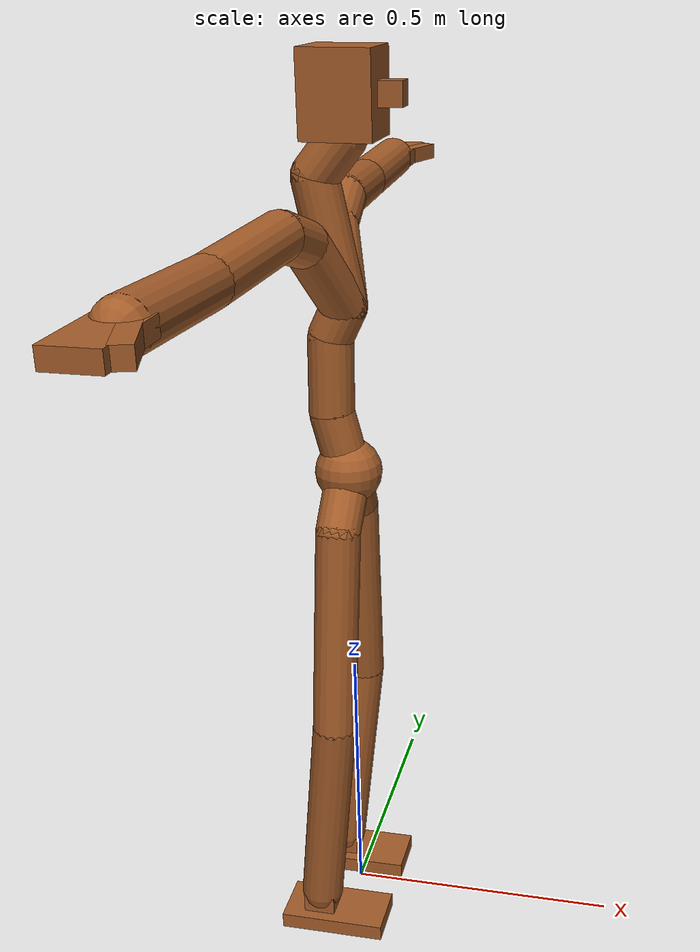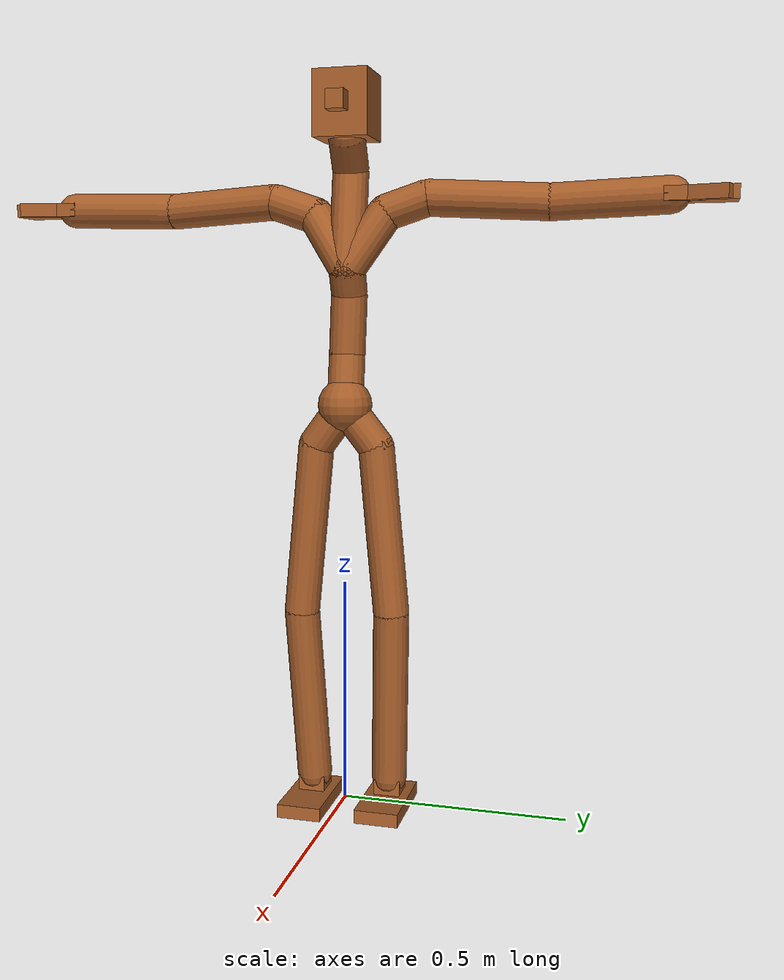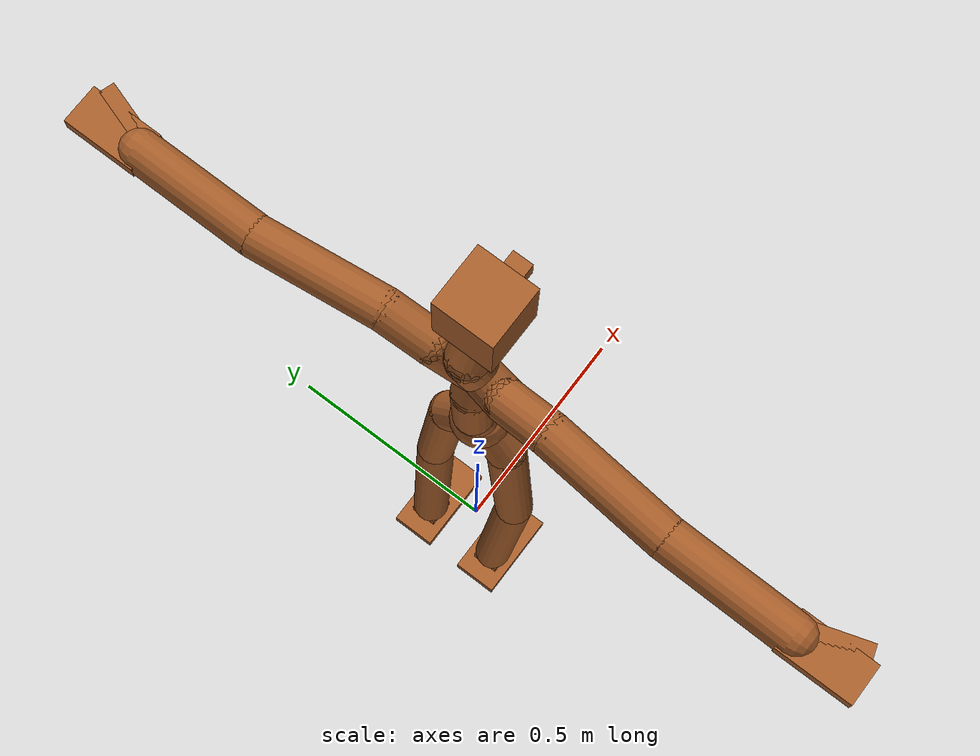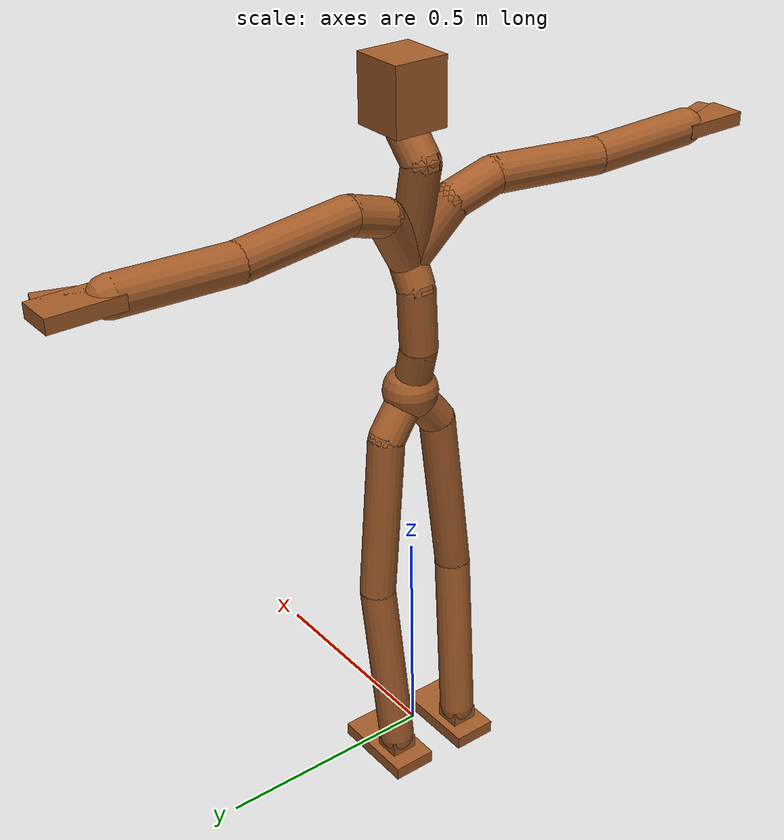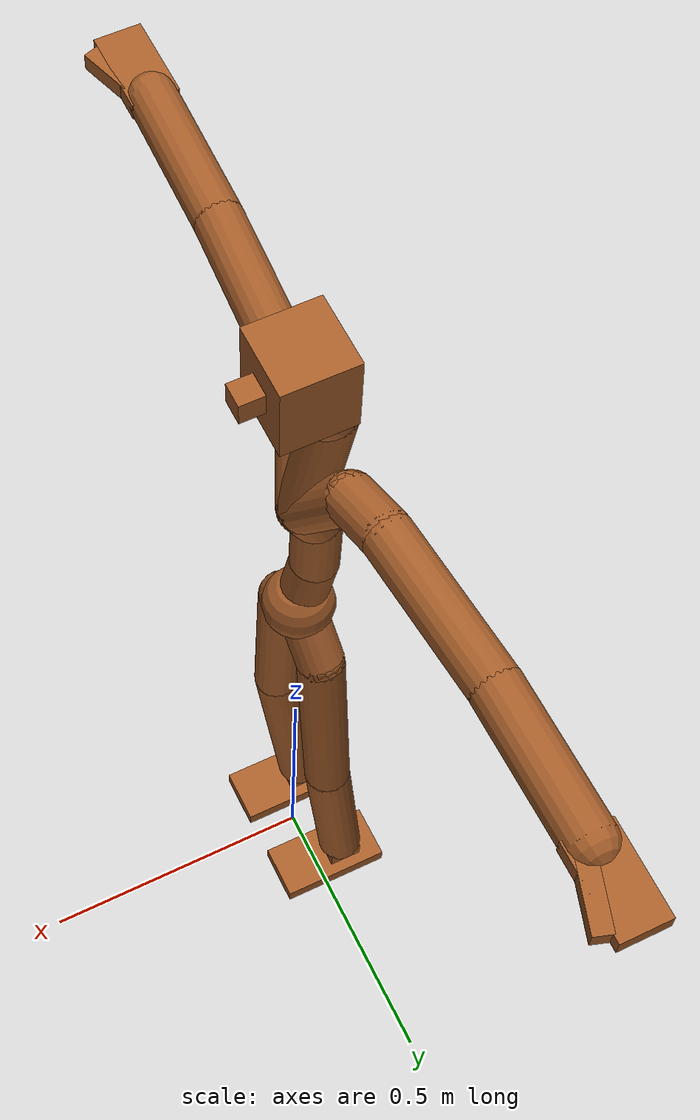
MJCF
<mujoco model="common-rig">
    <!--
            Robot Intelligence Lab
            Common Rig (Custom Humanoid) model

            @ Contact us : taemoon-jeong (motor_moon94@korea.ac.kr)
    -->
    <compiler coordinate="local" inertiafromgeom="true" angle="radian"/>

    <default>
        <joint limited="true" damping="1" armature="0"/>
        <geom contype="1" condim="3" margin="0.001" solref=".02 1" solimp=".8 .8 .01" material="matgeom"/>
        <motor ctrlrange="-.4 .4" ctrllimited="true"/>
    </default>

    <option timestep="0.005" iterations="50" tolerance="1e-10" solver="Newton" jacobian="dense" cone="pyramidal"/>
    <size nconmax="50" njmax="200" nstack="10000"/>

    <visual>
        <map force="0.1" zfar="30"/>
        <rgba haze="0.15 0.25 0.35 1"/>
        <quality shadowsize="2048"/>
        <global offwidth="800" offheight="800"/>
    </visual>

    <asset>
        <texture name="texgeom" type="cube" builtin="flat" mark="cross" width="127" height="1278"
            rgb1="0.8 0.6 0.4" rgb2="0.8 0.6 0.4" markrgb="1 1 1" random="0.01"/>
        <material name="matgeom" texture="texgeom" texuniform="true" rgba="0.8 0.6 0.4 1.0"/>
    </asset>

    <worldbody>

        <body name="base" pos="0 0 0.9">
            <freejoint name="base"/>
            <geom name="base" type="sphere" pos="0 0 0" size="0.06"/>
            <body name="pelvis" pos="0 0 0" euler="0 0 0" >
                <geom name="base2lpelvis" type="capsule" fromto="0 0 0 -0.006815334782004356 0.06951973587274551 -0.09140622615814209"  size="0.04" />
                <geom name="base2rpelvis" type="capsule" fromto="0 0 0 -0.004319818690419197 -0.06767047941684723 -0.09052169322967529"  size="0.04" />
                <joint name="pelvis1" type="hinge" pos="0 0 0" axis="1 0 0" range="-3.141592 3.141592" damping="60" stiffness="600" armature="0.02" />
                <joint name="pelvis2" type="hinge" pos="0 0 0" axis="0 1 0" range="-3.141592 3.141592" damping="60" stiffness="600" armature="0.02" />
                <joint name="pelvis3" type="hinge" pos="0 0 0" axis="0 0 1" range="-3.141592 3.141592" damping="60" stiffness="600" armature="0.02" />

                <body name="left_hip" pos="-0.006815334782004356 0.06951973587274551 -0.09140622615814209" euler="0 0 0">
                    <geom name="lhip2lknee" type="capsule" fromto="0 0 0 -0.004495806992 0.03427654505 -0.3751985729"  size="0.04" />
                    <joint name="l_hip1" type="hinge" pos="0 0 0" axis="1 0 0" range="-3.141592 3.141592" damping="30" stiffness="900" armature="0.01" />
                    <joint name="l_hip2" type="hinge" pos="0 0 0" axis="0 1 0" range="-3.141592 3.141592" damping="30" stiffness="900" armature="0.01" />
                    <joint name="l_hip3" type="hinge" pos="0 0 0" axis="0 0 1" range="-3.141592 3.141592" damping="30" stiffness="900" armature="0.01" />
                    <body name="left_knee" pos="-0.004495806992 0.03427654505 -0.3751985729" euler="0 0 0">
                        <geom name="lknee2lankle" type="capsule" fromto="0 0 0 -0.04369332828 -0.01359570026 -0.3979604542"  size="0.04" />
                        <joint name="l_knee" type="hinge" pos="0 0 0" axis="0 1 0" range="0.0175 2.0944" damping="30" stiffness="900" armature="0.0060" />
                        <body name="left_ankle" pos="-0.04369332828 -0.01359570026 -0.3979604542" euler="0 0 0">
                            <geom name="lankle" type="box" pos="0 0 -0.025" size="0.03 0.03 0.025" />
                            <geom name="lfoot" type="box" pos="0.03 0 -0.05" size="0.1 0.05 0.015" />
                            <joint name="l_ankle1" type="hinge" pos="0 0 0" axis="0 1 0" range="-3.141592 3.141592" stiffness="600" damping="20" armature="0.0008" />
                            <joint name="l_ankle2" type="hinge" pos="0 0 0" axis="1 0 0" range="-3.141592 3.141592" stiffness="600" damping="20" armature="0.0006" />
                            <joint name="l_ankle3" type="hinge" pos="0 0 0" axis="0 0 1" range="-0.52333333333 0.52333333333" stiffness="600" damping="20" armature="0.0006" />
                        </body>
                    </body>
                </body>

                <body name="right_hip" pos="-0.004319818690419197 -0.06767047941684723 -0.09052169322967529" euler="0 0 0">
                    <geom name="rhip2rknee" type="capsule" fromto="0 0 0 -0.008850031532 -0.03829005361 -0.3825689852"  size="0.04" />
                    <joint name="r_hip1" type="hinge" pos="0 0 0" axis="1 0 0" range="-3.141592 3.141592" damping="30" stiffness="900" armature="0.01" />
                    <joint name="r_hip2" type="hinge" pos="0 0 0" axis="0 1 0" range="-3.141592 3.141592" damping="30" stiffness="900" armature="0.01" />
                    <joint name="r_hip3" type="hinge" pos="0 0 0" axis="0 0 1" range="-0.52333333333 0.52333333333" damping="30" stiffness="900" armature="0.01" />
                    <body name="right_knee" pos="-0.008850031532 -0.03829005361 -0.3825689852" euler="0 0 0">
                        <geom name="rknee2rankle" type="capsule" fromto="0 0 0 -0.04231179971 0.01577377319 -0.398414582"  size="0.04" />
                        <joint name="r_knee" type="hinge" pos="0 0 0" axis="0 1 0" range="0.0175 2.0944" damping="30" stiffness="900" armature="0.0060" />
                        <body name="right_ankle" pos="-0.04231179971 0.01577377319 -0.398414582" euler="0 0 0">
                            <geom name="rankle" type="box" pos="0 0 -0.025" size="0.03 0.03 0.025" />
                            <geom name="rfoot" type="box" pos="0.03 0 -0.05" size="0.1 0.05 0.015" />
                            <joint name="r_ankle1" type="hinge" pos="0 0 0" axis="0 1 0" range="-3.141592 3.141592" stiffness="600" damping="20" armature="0.0008" />
                            <joint name="r_ankle2" type="hinge" pos="0 0 0" axis="1 0 0" range="-3.141592 3.141592" stiffness="600" damping="20" armature="0.0006" />
                            <joint name="r_ankle3" type="hinge" pos="0 0 0" axis="0 0 1" range="-3.141592 3.141592" stiffness="600" damping="20" armature="0.0006" />
                        </body>
                    </body>
                </body>

                <geom name="base2spine1" type="capsule" fromto="0 0 0 -0.02669631317257881 -0.00253287423402071 0.10896323621273041"  size="0.04" density="2226"/>
                <body name="spine1" pos="-0.02669631317257881 -0.00253287423402071 0.10896323621273041" euler="0 0 0">
                    <geom name="spine2spine" type="capsule" fromto="0 0 0 0.001092471182 0.005487040151 0.1351804286"  size="0.04" density="2226"/>
                    <joint name="spine1" type="hinge" pos="0 0 0" axis="0 1 0" range="-3.141592 3.141592" damping="60" stiffness="600" armature="0.02" />

                    <body name="spine2" pos="0.001092471182 0.005487040151 0.1351804286" euler="0 0 0">
                        <geom name="spine2spine2" type="capsule" fromto="0 0 0 0.02542456612 0.001456997823 0.05292221904"  size="0.04" density="2226"/>
                        <joint name="spine2" type="hinge" pos="0 0 0" axis="0 1 0" range="-3.141592 3.141592" damping="60" stiffness="600" armature="0.02" />

                        <body name="spine3" pos="0.02542456612 0.001456997823 0.05292221904" euler="0 0 0">
                            <geom name="spine2spine3" type="capsule" fromto="0 0 0 -0.04285703227 -0.002778389724 0.2138703763"  size="0.04" density="2226"/>
                            <joint name="spine3" type="hinge" pos="0 0 0" axis="0 1 0" range="-3.141592 3.141592" damping="60" stiffness="600" armature="0.02" />

                            <body name="neck" pos="-0.04285703227 -0.002778389724 0.2138703763" euler="0 0 0">
                                <geom name="neck2head" type="capsule" fromto="0 0 0 0.05134896934 0.00515184016 0.0649696588"  size="0.04" />

                                <body name="head" pos="0.05134896934 0.00515184016 0.06496965885" euler="0 0 0">
                                    <geom name="head" type="box" pos="0 0  0.06496965885" size="0.06 0.06 0.07" />
                                    <geom name="nose" type="box" pos="0.05 0  0.06496965885" size="0.05 0.02 0.02" />
                                    <joint name="head1" type="hinge" pos="0 0 0" axis="1 0 0" range="-3.141592 3.141592" damping="5" stiffness="50" armature="0.02" />
                                    <joint name="head2" type="hinge" pos="0 0 0" axis="0 1 0" range="-3.141592 3.141592" damping="5" stiffness="50" armature="0.02" />
                                    <joint name="head3" type="hinge" pos="0 0 0" axis="0 0 1" range="-3.141592 3.141592" damping="5" stiffness="50" armature="0.02" />
                                </body>
                            </body>

                            <geom name="spine2lcollar" type="capsule" fromto="0 0 0 -0.03408960626 0.07884474564 0.1217493117"  size="0.04" />
                            <body name="left_collar" pos="-0.03408960626 0.07884474564 0.1217493117" euler="0 0 0">
                                <geom name="lcollar2lshoulder" type="capsule" fromto="0 0 0 -0.008868150413 0.09097691625 0.03046888113"  size="0.04" />
                                <joint name="l_collar1" type="hinge" pos="0 0 0" axis="1 0 0" range="-3.141592 3.141592" stiffness="200" damping="20" armature="0.0068" />
                                <joint name="l_collar2" type="hinge" pos="0 0 0" axis="0 0 1" range="-3.141592 3.141592" stiffness="200" damping="20" armature="0.0051" />
                                <joint name="l_collar3" type="hinge" pos="0 0 0" axis="0 1 0" range="-3.141592 3.141592" stiffness="200" damping="20" armature="0.0051" />

                                <body name="left_shoulder" pos="-0.008868150413 0.09097691625 0.03046888113" euler="0 0 0">
                                    <geom name="lshoulder2lelbow" type="capsule" fromto="0 0 0 -0.02745642886 0.2596122175 -0.01277205348"  size="0.04" />
                                    <joint name="l_shoulder1" type="hinge" pos="0 0 0" axis="1 0 0" range="-3.141592 3.141592" stiffness="200" damping="20" armature="0.0068" />
                                    <joint name="l_shoulder2" type="hinge" pos="0 0 0" axis="0 0 1" range="-3.141592 3.141592" stiffness="200" damping="20" armature="0.0051" />
                                    <joint name="l_shoulder3" type="hinge" pos="0 0 0" axis="0 1 0" range="-3.141592 3.141592" stiffness="200" damping="20" armature="0.0051" />

                                    <body name="left_elbow" pos="-0.02745642886 0.2596122175 -0.01277205348" euler="0 0 0">
                                        <geom name="lelbow2lwrist" type="capsule" fromto="0 0 0 -0.001170918345 0.2492336035 0.008986026049"  size="0.04" />
                                        <joint name="l_elbow" type="hinge" pos="0 0 0" axis="0 0 1" range="-2.61666666667 -0.01" stiffness="150" damping="15" armature="0.0028" />

                                        <body name="left_wrist" pos="-0.001170918345 0.2492336035 0.008986026049" euler="0 0 0">
                                            <geom name="lthumb" type="box" pos="0.03 0.05 0" size="0.015 0.07 0.015" euler="0 0 -60"/>
                                            <geom name="lpalm" type="box" pos="0 0.06 0" size="0.04 0.075 0.015" euler="0 0 0"/>
                                            <joint name="l_wrist1" type="hinge" pos="0 0 0" axis="0 1 0" range="-3.141592 3.141592" damping="5" stiffness="50" armature="0.02" />
                                            <joint name="l_wrist2" type="hinge" pos="0 0 0" axis="0 0 1" range="-3.141592 3.141592" damping="5" stiffness="50" armature="0.02" />
                                            <joint name="l_wrist3" type="hinge" pos="0 0 0" axis="1 0 0" range="-3.141592 3.141592" damping="5" stiffness="50" armature="0.02" />
                                        </body>
                                    </body>
                                </body>
                            </body>

                            <geom name="spine2rcollar" type="capsule" fromto="0 0 0 -0.0386152789 -0.08175918739 0.1188328564"  size="0.04" />
                            <body name="right_collar" pos="-0.0386152789 -0.08175918739 0.1188328564" euler="0 0 0">
                                <geom name="rcollar2rshoulder" type="capsule" fromto="0 0 0 -0.009143069386 -0.0960123837 0.0325511694"  size="0.04" />
                                <joint name="r_collar1" type="hinge" pos="0 0 0" axis="1 0 0" range="-3.141592 3.141592" stiffness="200" damping="20" armature="0.0068" />
                                <joint name="r_collar2" type="hinge" pos="0 0 0" axis="0 0 1" range="-3.141592 3.141592" stiffness="200" damping="20" armature="0.0051" />
                                <joint name="r_collar3" type="hinge" pos="0 0 0" axis="0 1 0" range="-3.141592 3.141592" stiffness="200" damping="20" armature="0.0051" />

                                <body name="right_shoulder" pos="-0.009143069386 -0.0960123837 0.0325511694" euler="0 0 0">
                                    <geom name="rshoulder2relbow" type="capsule" fromto="0 0 0 -0.02140098065 -0.2537419498 -0.0133292377"  size="0.04" />
                                    <joint name="r_shoulder1" type="hinge" pos="0 0 0" axis="1 0 0" range="-3.141592 3.141592" stiffness="200" damping="20" armature="0.0068" />
                                    <joint name="r_shoulder2" type="hinge" pos="0 0 0" axis="0 0 1" range="-3.141592 3.141592" stiffness="200" damping="20" armature="0.0051" />
                                    <joint name="r_shoulder3" type="hinge" pos="0 0 0" axis="0 1 0" range="-3.141592 3.141592" stiffness="200" damping="20" armature="0.0051" />

                                    <body name="right_elbow" pos="-0.02140098065 -0.2537419498 -0.0133292377" euler="0 0 0">
                                        <geom name="relbow2rwrist" type="capsule" fromto="0 0 0 -0.005559198558 -0.2552981079 0.007772296667"  size="0.04" />
                                        <joint name="r_elbow" type="hinge" pos="0 0 0" axis="0 0 1" range="0.01 2.61666666667" stiffness="150" damping="15" armature="0.0028" />

                                        <body name="right_wrist" pos="-0.005559198558 -0.2552981079 0.007772296667" euler="0 0 0">
                                            <geom name="rthumb" type="box" pos="0.03 -0.05 0" size="0.015 0.07 0.015" euler="0 0 60"/>
                                            <geom name="rpalm" type="box" pos="0 -0.06 0" size="0.04 0.075 0.015" euler="0 0 0"/>
                                            <joint name="r_wrist1" type="hinge" pos="0 0 0" axis="0 1 0" range="-3.141592 3.141592" damping="5" stiffness="50" armature="0.02" />
                                            <joint name="r_wrist2" type="hinge" pos="0 0 0" axis="0 0 1" range="-3.141592 3.141592" damping="5" stiffness="50" armature="0.02" />
                                            <joint name="r_wrist3" type="hinge" pos="0 0 0" axis="1 0 0" range="-3.141592 3.141592" damping="5" stiffness="50" armature="0.02" />
                                        </body>
                                    </body>
                                </body>
                            </body>
                        </body>
                    </body>
                </body>
            </body>
        </body>
    </worldbody>

    <actuator>
        <motor name="pelvis1"       gear="200" joint="pelvis1" />
        <motor name="pelvis2"       gear="200" joint="pelvis2" />
        <motor name="pelvis3"       gear="200" joint="pelvis3" />
        <motor name="spine1"       gear="200" joint="spine1" />
        <motor name="spine2"       gear="200" joint="spine2" />
        <motor name="spine3"       gear="200" joint="spine3" />
        <motor name="r_collar1"       gear="100" joint="r_collar1" />
        <motor name="r_collar2"       gear="100" joint="r_collar2" />
        <motor name="r_collar3"       gear="100" joint="r_collar3" />

        <motor name="r_shoulder1"       gear="100" joint="r_shoulder1" />
        <motor name="r_shoulder2"       gear="100" joint="r_shoulder2" />
        <motor name="r_shoulder3"       gear="100" joint="r_shoulder3" />
        <motor name="r_elbow"       gear="200" joint="r_elbow" />
        <motor name="r_wrist1"       gear="100" joint="r_wrist1" />
        <motor name="r_wrist2"       gear="100" joint="r_wrist2" />
        <motor name="r_wrist3"       gear="100" joint="r_wrist3" />
        <motor name="l_collar1"       gear="100" joint="l_collar1" />
        <motor name="l_collar2"       gear="100" joint="l_collar2" />
        <motor name="l_collar3"       gear="100" joint="l_collar3" />
        <motor name="l_shoulder1"       gear="100" joint="l_shoulder1" />
        <motor name="l_shoulder2"       gear="100" joint="l_shoulder2" />
        <motor name="l_shoulder3"       gear="100" joint="l_shoulder3" />
        <motor name="l_elbow"       gear="200" joint="l_elbow" />
        <motor name="l_wrist1"       gear="100" joint="l_wrist1" />
        <motor name="l_wrist2"       gear="100" joint="l_wrist2" />
        <motor name="l_wrist3"       gear="100" joint="l_wrist3" />
        <motor name="r_hip1"       gear="600" joint="r_hip1" />
        <motor name="r_hip2"       gear="200" joint="r_hip2" />
        <motor name="r_hip3"       gear="200" joint="r_hip3" />
        <motor name="r_knee"       gear="400" joint="r_knee" />
        <motor name="r_ankle1"       gear="100" joint="r_ankle1" />
        <motor name="r_ankle2"       gear="100" joint="r_ankle2" />
        <motor name="r_ankle3"       gear="100" joint="r_ankle3" />
        <motor name="l_hip1"       gear="600" joint="l_hip1" />
        <motor name="l_hip2"       gear="200" joint="l_hip2" />
        <motor name="l_hip3"       gear="200" joint="l_hip3" />
        <motor name="l_knee"       gear="400" joint="l_knee" />
        <motor name="l_ankle1"       gear="100" joint="l_ankle1" />
        <motor name="l_ankle2"       gear="100" joint="l_ankle2" />
        <motor name="l_ankle3"       gear="100" joint="l_ankle3" />
        <motor name="head1"       gear="200" joint="head1" />
        <motor name="head2"       gear="200" joint="head2" />
        <motor name="head3"       gear="200" joint="head3" />
    </actuator>

    <!-- exclude -->
    <contact>
        <exclude body1="neck" body2="right_shoulder"/>
        <exclude body1="spine3" body2="right_shoulder"/>
        <exclude body1="right_shoulder" body2="right_elbow"/>
        <exclude body1="right_elbow" body2="right_wrist"/>

        <exclude body1="neck" body2="left_shoulder"/>
        <exclude body1="spine3" body2="left_shoulder"/>
        <exclude body1="left_shoulder" body2="left_elbow"/>
        <exclude body1="left_elbow" body2="left_wrist"/>

        <exclude body1="neck" body2="spine3"/>
        <exclude body1="spine1" body2="pelvis"/>
        <exclude body1="pelvis" body2="base"/>

        <exclude body1="pelvis" body2="right_hip"/>
        <exclude body1="right_hip" body2="right_knee"/>
        <exclude body1="right_knee" body2="right_ankle"/>

        <exclude body1="pelvis" body2="left_hip"/>
        <exclude body1="left_hip" body2="left_knee"/>
        <exclude body1="left_knee" body2="left_ankle"/>
    </contact>

</mujoco>
